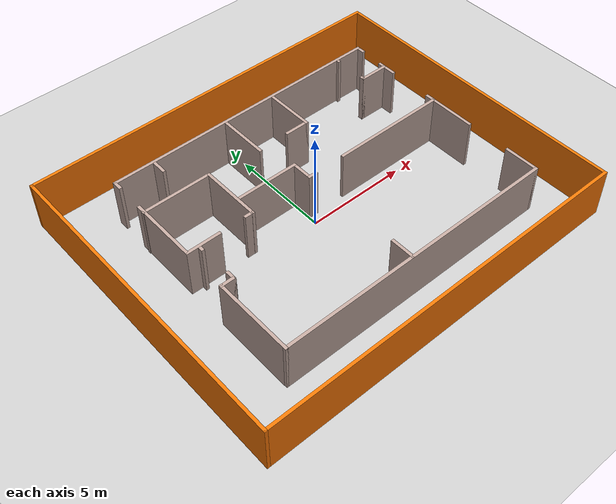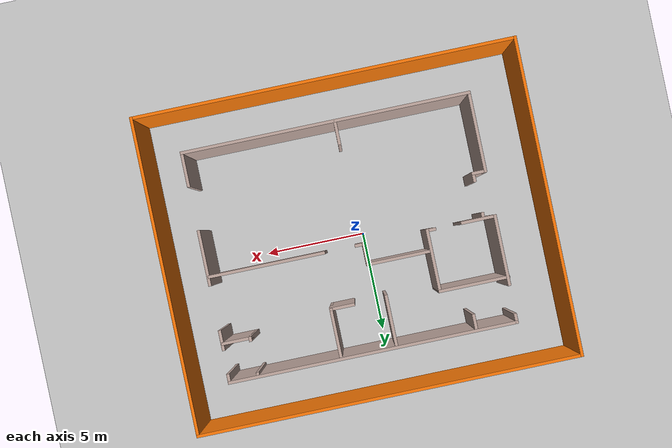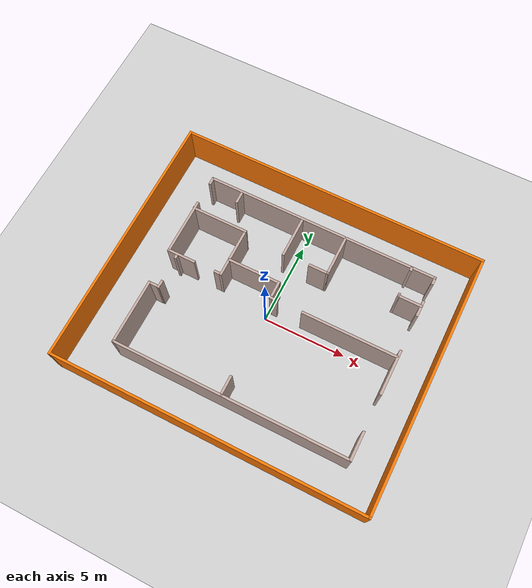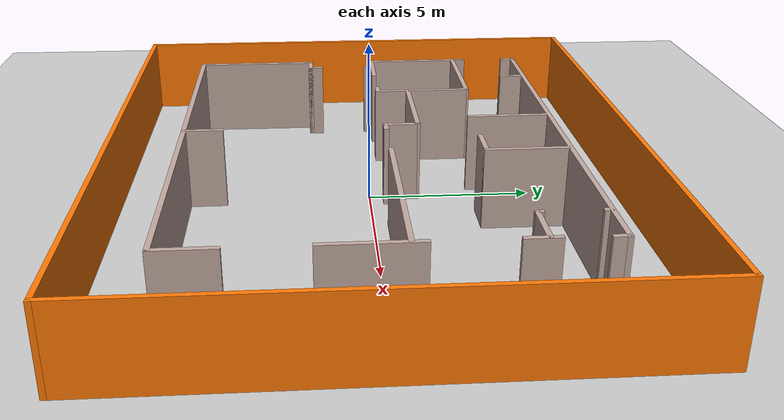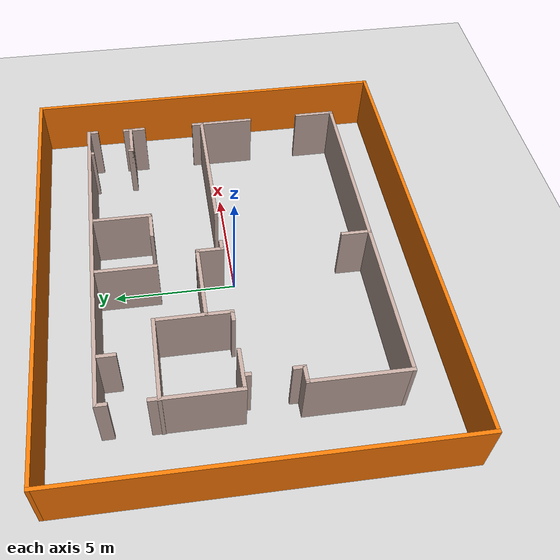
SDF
<sdf version="1.6">
 <world name="default">
  <light name="sun" type="directional">
   <pose>0 0 10 0 -0 0</pose>
   <diffuse>0.8 0.8 0.8 1</diffuse>
   <specular>0.1 0.1 0.1 1</specular>
   <attenuation>
    <range>1000</range>
    <constant>0.9</constant>
    <linear>0.01</linear>
    <quadratic>0.001</quadratic>
   </attenuation>
   <direction>-0.5 0.5 -1</direction>
  </light>
  <model name="ground_plane">
   <static>1</static>
   <link name="link">
    <collision name="collision">
     <geometry><plane><normal>0 0 1</normal><size>100 100</size></plane></geometry>
     <surface><friction><ode><mu>100</mu><mu2>50</mu2></ode></friction></surface>
    </collision>
    <visual name="visual">
     <cast_shadows>0</cast_shadows>
     <geometry><plane><normal>0 0 1</normal><size>100 100</size></plane></geometry>
     <material>
      <script><uri>file://media/materials/scripts/gazebo.material</uri><name>Gazebo/Grey</name></script>
     </material>
    </visual>
   </link>
  </model>
  <gravity>0 0 -9.8</gravity>
  <magnetic_field>6e-06 2.3e-05 -4.2e-05</magnetic_field>
  <atmosphere type="adiabatic"/>
  <physics name="default_physics" default="0" type="ode">
   <max_step_size>0.001</max_step_size>
   <real_time_factor>1</real_time_factor>
   <real_time_update_rate>1000</real_time_update_rate>
  </physics>
  <scene><ambient>0.4 0.4 0.4 1</ambient><background>0.7 0.7 0.7 1</background><shadows>1</shadows></scene>
  <spherical_coordinates>
   <surface_model>EARTH_WGS84</surface_model>
   <latitude_deg>0</latitude_deg>
   <longitude_deg>0</longitude_deg>
   <elevation>0</elevation>
   <heading_deg>0</heading_deg>
  </spherical_coordinates>
  <model name="Simple_House">
   <pose>0.69044 0.03862 0 0 -0 0</pose>
   <link name="Wall_10">
    <collision name="Wall_10_Collision">
     <geometry><box><size>1.75 0.15 2.5</size></box></geometry>
     <pose>0 0 1.25 0 -0 0</pose>
    </collision>
    <visual name="Wall_10_Visual">
     <pose>0 0 1.25 0 -0 0</pose>
     <geometry><box><size>1.75 0.15 2.5</size></box></geometry>
     <material>
      <script><uri>file://media/materials/scripts/gazebo.material</uri><name>Gazebo/Grey</name></script>
      <ambient>0.760784 0.662745 0.627451 1</ambient>
     </material>
    </visual>
    <pose>7.05351 -4.83433 0 0 -0 1.5708</pose>
   </link>
   <link name="Wall_12">
    <collision name="Wall_12_Collision">
     <geometry><box><size>5.75 0.15 2.5</size></box></geometry>
     <pose>0 0 1.25 0 -0 0</pose>
    </collision>
    <visual name="Wall_12_Visual">
     <pose>0 0 1.25 0 -0 0</pose>
     <geometry><box><size>5.75 0.15 2.5</size></box></geometry>
     <material>
      <script><uri>file://media/materials/scripts/gazebo.material</uri><name>Gazebo/Grey</name></script>
      <ambient>0.760784 0.662745 0.627451 1</ambient>
     </material>
    </visual>
    <pose>4.1756 0.462498 0 0 -0 0</pose>
   </link>
   <link name="Wall_14">
    <collision name="Wall_14_Collision">
     <geometry><box><size>2.75 0.15 2.5</size></box></geometry>
     <pose>0 0 1.25 0 -0 0</pose>
    </collision>
    <visual name="Wall_14_Visual">
     <pose>0 0 1.25 0 -0 0</pose>
     <geometry><box><size>2.75 0.15 2.5</size></box></geometry>
     <material>
      <script><uri>file://media/materials/scripts/gazebo.material</uri><name>Gazebo/Grey</name></script>
      <ambient>0.760784 0.662745 0.627451 1</ambient>
     </material>
    </visual>
    <pose>7.0356 -0.467502 0 0 0 -1.5708</pose>
   </link>
   <link name="Wall_16">
    <collision name="Wall_16_Collision">
     <geometry><box><size>3.5 0.15 2.5</size></box></geometry>
     <pose>0 0 1.25 0 -0 0</pose>
    </collision>
    <visual name="Wall_16_Visual">
     <pose>0 0 1.25 0 -0 0</pose>
     <geometry><box><size>3.5 0.15 2.5</size></box></geometry>
     <material>
      <script><uri>file://media/materials/scripts/gazebo.material</uri><name>Gazebo/Grey</name></script>
      <ambient>0.760784 0.662745 0.627451 1</ambient>
     </material>
    </visual>
    <pose>-7.04937 2.10789 0 0 0 -1.5708</pose>
   </link>
   <link name="Wall_17">
    <collision name="Wall_17_Collision">
     <geometry><box><size>1.75 0.15 2.5</size></box></geometry>
     <pose>0 0 1.25 0 -0 0</pose>
    </collision>
    <visual name="Wall_17_Visual">
     <pose>0 0 1.25 0 -0 0</pose>
     <geometry><box><size>1.75 0.15 2.5</size></box></geometry>
     <material>
      <script><uri>file://media/materials/scripts/gazebo.material</uri><name>Gazebo/Grey</name></script>
      <ambient>0.760784 0.662745 0.627451 1</ambient>
     </material>
    </visual>
    <pose>-6.24937 0.432887 0 0 -0 0</pose>
   </link>
   <link name="Wall_19">
    <collision name="Wall_19_Collision">
     <geometry><box><size>0.25 0.15 2.5</size></box></geometry>
     <pose>0 0 1.25 0 -0 0</pose>
    </collision>
    <visual name="Wall_19_Visual">
     <pose>0 0 1.25 0 -0 0</pose>
     <geometry><box><size>0.25 0.15 2.5</size></box></geometry>
     <material>
      <script><uri>file://media/materials/scripts/gazebo.material</uri><name>Gazebo/Grey</name></script>
      <ambient>0.760784 0.662745 0.627451 1</ambient>
     </material>
    </visual>
    <pose>-6.48619 0.252671 0 0 -0 1.5708</pose>
   </link>
   <link name="Wall_2">
    <collision name="Wall_2_Collision">
     <geometry><box><size>1.25 0.15 2.5</size></box></geometry>
     <pose>0 0 1.25 0 -0 0</pose>
    </collision>
    <visual name="Wall_2_Visual">
     <pose>0 0 1.25 0 -0 0</pose>
     <geometry><box><size>1.25 0.15 2.5</size></box></geometry>
     <material>
      <script><uri>file://media/materials/scripts/gazebo.material</uri><name>Gazebo/Grey</name></script>
      <ambient>0.760784 0.662745 0.627451 1</ambient>
     </material>
    </visual>
    <pose>-0.456991 -5.08033 0 0 0 -1.5708</pose>
   </link>
   <link name="Wall_21">
    <collision name="Wall_21_Collision">
     <geometry><box><size>14.25 0.15 2.5</size></box></geometry>
     <pose>0 0 1.25 0 -0 0</pose>
    </collision>
    <visual name="Wall_21_Visual">
     <pose>0 0 1.25 0 -0 0</pose>
     <geometry><box><size>14.25 0.15 2.5</size></box></geometry>
     <material>
      <script><uri>file://media/materials/scripts/gazebo.material</uri><name>Gazebo/Grey</name></script>
      <ambient>0.760784 0.662745 0.627451 1</ambient>
     </material>
    </visual>
    <pose>0.024064 5.63433 0 0 -0 0</pose>
   </link>
   <link name="Wall_22">
    <collision name="Wall_22_Collision">
     <geometry><box><size>0.5 0.15 2.5</size></box></geometry>
     <pose>0 0 1.25 0 -0 0</pose>
    </collision>
    <visual name="Wall_22_Visual">
     <pose>0 0 1.25 0 -0 0</pose>
     <geometry><box><size>0.5 0.15 2.5</size></box></geometry>
     <material>
      <script><uri>file://media/materials/scripts/gazebo.material</uri><name>Gazebo/Grey</name></script>
      <ambient>0.760784 0.662745 0.627451 1</ambient>
     </material>
    </visual>
    <pose>7.07406 5.45933 0 0 0 -1.5708</pose>
   </link>
   <link name="Wall_24">
    <collision name="Wall_24_Collision">
     <geometry><box><size>0.5 0.15 2.5</size></box></geometry>
     <pose>0 0 1.25 0 -0 0</pose>
    </collision>
    <visual name="Wall_24_Visual">
     <pose>0 0 1.25 0 -0 0</pose>
     <geometry><box><size>0.5 0.15 2.5</size></box></geometry>
     <material>
      <script><uri>file://media/materials/scripts/gazebo.material</uri><name>Gazebo/Grey</name></script>
      <ambient>0.760784 0.662745 0.627451 1</ambient>
     </material>
    </visual>
    <pose>-7.02594 5.45933 0 0 0 -1.5708</pose>
   </link>
   <link name="Wall_30">
    <collision name="Wall_30_Collision">
     <geometry><box><size>3.5 0.15 2.5</size></box></geometry>
     <pose>0 0 1.25 0 -0 0</pose>
    </collision>
    <visual name="Wall_30_Visual">
     <pose>0 0 1.25 0 -0 0</pose>
     <geometry><box><size>3.5 0.15 2.5</size></box></geometry>
     <material>
      <script><uri>file://media/materials/scripts/gazebo.material</uri><name>Gazebo/Grey</name></script>
      <ambient>0.760784 0.662745 0.627451 1</ambient>
     </material>
    </visual>
    <pose>-5.39906 3.42228 0 0 -0 0</pose>
   </link>
   <link name="Wall_31">
    <collision name="Wall_31_Collision">
     <geometry><box><size>3.12778 0.15 2.5</size></box></geometry>
     <pose>0 0 1.25 0 -0 0</pose>
    </collision>
    <visual name="Wall_31_Visual">
     <pose>0 0 1.25 0 -0 0</pose>
     <geometry><box><size>3.12778 0.15 2.5</size></box></geometry>
     <material>
      <script><uri>file://media/materials/scripts/gazebo.material</uri><name>Gazebo/Grey</name></script>
      <ambient>0.760784 0.662745 0.627451 1</ambient>
     </material>
    </visual>
    <pose>-3.72132 1.93339 0 0 0 -1.56896</pose>
   </link>
   <link name="Wall_32">
    <collision name="Wall_32_Collision">
     <geometry><box><size>0.5 0.15 2.5</size></box></geometry>
     <pose>0 0 1.25 0 -0 0</pose>
    </collision>
    <visual name="Wall_32_Visual">
     <pose>0 0 1.25 0 -0 0</pose>
     <geometry><box><size>0.5 0.15 2.5</size></box></geometry>
     <material>
      <script><uri>file://media/materials/scripts/gazebo.material</uri><name>Gazebo/Grey</name></script>
      <ambient>0.760784 0.662745 0.627451 1</ambient>
     </material>
    </visual>
    <pose>-3.8979 0.44883 0 0 -0 3.14159</pose>
   </link>
   <link name="Wall_34">
    <collision name="Wall_34_Collision">
     <geometry><box><size>3.25 0.15 2.5</size></box></geometry>
     <pose>0 0 1.25 0 -0 0</pose>
    </collision>
    <visual name="Wall_34_Visual">
     <pose>0 0 1.25 0 -0 0</pose>
     <geometry><box><size>3.25 0.15 2.5</size></box></geometry>
     <material>
      <script><uri>file://media/materials/scripts/gazebo.material</uri><name>Gazebo/Grey</name></script>
      <ambient>0.760784 0.662745 0.627451 1</ambient>
     </material>
    </visual>
    <pose>-2.14323 1.4433 0 0 -0 0</pose>
   </link>
   <link name="Wall_35">
    <collision name="Wall_35_Collision">
     <geometry><box><size>1.14137 0.15 2.5</size></box></geometry>
     <pose>0 0 1.25 0 -0 0</pose>
    </collision>
    <visual name="Wall_35_Visual">
     <pose>0 0 1.25 0 -0 0</pose>
     <geometry><box><size>1.14137 0.15 2.5</size></box></geometry>
     <material>
      <script><uri>file://media/materials/scripts/gazebo.material</uri><name>Gazebo/Grey</name></script>
      <ambient>0.760784 0.662745 0.627451 1</ambient>
     </material>
    </visual>
    <pose>-0.593183 0.947638 0 0 0 -1.5707</pose>
   </link>
   <link name="Wall_36">
    <collision name="Wall_36_Collision">
     <geometry><box><size>0.5 0.15 2.5</size></box></geometry>
     <pose>0 0 1.25 0 -0 0</pose>
    </collision>
    <visual name="Wall_36_Visual">
     <pose>0 0 1.25 0 -0 0</pose>
     <geometry><box><size>0.5 0.15 2.5</size></box></geometry>
     <material>
      <script><uri>file://media/materials/scripts/gazebo.material</uri><name>Gazebo/Grey</name></script>
      <ambient>0.760784 0.662745 0.627451 1</ambient>
     </material>
    </visual>
    <pose>-0.413811 0.451973 0 0 -0 0</pose>
   </link>
   <link name="Wall_38">
    <collision name="Wall_38_Collision">
     <geometry><box><size>0.75 0.15 2.5</size></box></geometry>
     <pose>0 0 1.25 0 -0 0</pose>
    </collision>
    <visual name="Wall_38_Visual">
     <pose>0 0 1.25 0 -0 0</pose>
     <geometry><box><size>0.75 0.15 2.5</size></box></geometry>
     <material>
      <script><uri>file://media/materials/scripts/gazebo.material</uri><name>Gazebo/Grey</name></script>
      <ambient>0.760784 0.662745 0.627451 1</ambient>
     </material>
    </visual>
    <pose>-5.056 5.20196 0 0 -0 1.5708</pose>
   </link>
   <link name="Wall_4">
    <collision name="Wall_4_Collision">
     <geometry><box><size>14.25 0.15 2.5</size></box></geometry>
     <pose>0 0 1.25 0 -0 0</pose>
    </collision>
    <visual name="Wall_4_Visual">
     <pose>0 0 1.25 0 -0 0</pose>
     <geometry><box><size>14.25 0.15 2.5</size></box></geometry>
     <material>
      <script><uri>file://media/materials/scripts/gazebo.material</uri><name>Gazebo/Grey</name></script>
      <ambient>0.760784 0.662745 0.627451 1</ambient>
     </material>
    </visual>
    <pose>0.003509 -5.63433 0 0 -0 0</pose>
   </link>
   <link name="Wall_40">
    <collision name="Wall_40_Collision">
     <geometry><box><size>2.5 0.15 2.5</size></box></geometry>
     <pose>0 0 1.25 0 -0 0</pose>
    </collision>
    <visual name="Wall_40_Visual">
     <pose>0 0 1.25 0 -0 0</pose>
     <geometry><box><size>2.5 0.15 2.5</size></box></geometry>
     <material>
      <script><uri>file://media/materials/scripts/gazebo.material</uri><name>Gazebo/Grey</name></script>
      <ambient>0.760784 0.662745 0.627451 1</ambient>
     </material>
    </visual>
    <pose>-1.13734 4.3094 0 0 -0 1.5708</pose>
   </link>
   <link name="Wall_42">
    <collision name="Wall_42_Collision">
     <geometry><box><size>1.25 0.15 2.5</size></box></geometry>
     <pose>0 0 1.25 0 -0 0</pose>
    </collision>
    <visual name="Wall_42_Visual">
     <pose>0 0 1.25 0 -0 0</pose>
     <geometry><box><size>1.25 0.15 2.5</size></box></geometry>
     <material>
      <script><uri>file://media/materials/scripts/gazebo.material</uri><name>Gazebo/Grey</name></script>
      <ambient>0.760784 0.662745 0.627451 1</ambient>
     </material>
    </visual>
    <pose>1.03736 3.19013 0 0 -0 0</pose>
   </link>
   <link name="Wall_43">
    <collision name="Wall_43_Collision">
     <geometry><box><size>2.5 0.15 2.5</size></box></geometry>
     <pose>0 0 1.25 0 -0 0</pose>
    </collision>
    <visual name="Wall_43_Visual">
     <pose>0 0 1.25 0 -0 0</pose>
     <geometry><box><size>2.5 0.15 2.5</size></box></geometry>
     <material>
      <script><uri>file://media/materials/scripts/gazebo.material</uri><name>Gazebo/Grey</name></script>
      <ambient>0.760784 0.662745 0.627451 1</ambient>
     </material>
    </visual>
    <pose>1.58736 4.36513 0 0 -0 1.5708</pose>
   </link>
   <link name="Wall_45">
    <collision name="Wall_45_Collision">
     <geometry><box><size>0.25 0.15 2.5</size></box></geometry>
     <pose>0 0 1.25 0 -0 0</pose>
    </collision>
    <visual name="Wall_45_Visual">
     <pose>0 0 1.25 0 -0 0</pose>
     <geometry><box><size>0.25 0.15 2.5</size></box></geometry>
     <material>
      <script><uri>file://media/materials/scripts/gazebo.material</uri><name>Gazebo/Grey</name></script>
      <ambient>0.760784 0.662745 0.627451 1</ambient>
     </material>
    </visual>
    <pose>5.66862 5.54572 0 0 0 -1.5708</pose>
   </link>
   <link name="Wall_47">
    <collision name="Wall_47_Collision">
     <geometry><box><size>0.25 0.15 2.5</size></box></geometry>
     <pose>0 0 1.25 0 -0 0</pose>
    </collision>
    <visual name="Wall_47_Visual">
     <pose>0 0 1.25 0 -0 0</pose>
     <geometry><box><size>0.25 0.15 2.5</size></box></geometry>
     <material>
      <script><uri>file://media/materials/scripts/gazebo.material</uri><name>Gazebo/Grey</name></script>
      <ambient>0.760784 0.662745 0.627451 1</ambient>
     </material>
    </visual>
    <pose>5.66862 3.78779 0 0 0 -1.5708</pose>
   </link>
   <link name="Wall_48">
    <collision name="Wall_48_Collision">
     <geometry><box><size>1.5 0.15 2.5</size></box></geometry>
     <pose>0 0 1.25 0 -0 0</pose>
    </collision>
    <visual name="Wall_48_Visual">
     <pose>0 0 1.25 0 -0 0</pose>
     <geometry><box><size>1.5 0.15 2.5</size></box></geometry>
     <material>
      <script><uri>file://media/materials/scripts/gazebo.material</uri><name>Gazebo/Grey</name></script>
      <ambient>0.760784 0.662745 0.627451 1</ambient>
     </material>
    </visual>
    <pose>6.34362 3.73779 0 0 -0 0</pose>
   </link>
   <link name="Wall_51">
    <collision name="Wall_51_Collision">
     <geometry><box><size>1 0.15 2.5</size></box></geometry>
     <pose>0 0 1.25 0 -0 0</pose>
    </collision>
    <visual name="Wall_51_Visual">
     <pose>0 0 1.25 0 -0 0</pose>
     <geometry><box><size>1 0.15 2.5</size></box></geometry>
     <material>
      <script><uri>file://media/materials/scripts/gazebo.material</uri><name>Gazebo/Grey</name></script>
      <ambient>0.760784 0.662745 0.627451 1</ambient>
     </material>
    </visual>
    <pose>7.03332 3.5747 0 0 0 -1.5708</pose>
   </link>
   <link name="Wall_6">
    <collision name="Wall_6_Collision">
     <geometry><box><size>4 0.15 2.5</size></box></geometry>
     <pose>0 0 1.25 0 -0 0</pose>
    </collision>
    <visual name="Wall_6_Visual">
     <pose>0 0 1.25 0 -0 0</pose>
     <geometry><box><size>4 0.15 2.5</size></box></geometry>
     <material>
      <script><uri>file://media/materials/scripts/gazebo.material</uri><name>Gazebo/Grey</name></script>
      <ambient>0.760784 0.662745 0.627451 1</ambient>
     </material>
    </visual>
    <pose>-7.04649 -3.70933 0 0 -0 1.5708</pose>
   </link>
   <link name="Wall_7">
    <collision name="Wall_7_Collision">
     <geometry><box><size>0.75 0.15 2.5</size></box></geometry>
     <pose>0 0 1.25 0 -0 0</pose>
    </collision>
    <visual name="Wall_7_Visual">
     <pose>0 0 1.25 0 -0 0</pose>
     <geometry><box><size>0.75 0.15 2.5</size></box></geometry>
     <material>
      <script><uri>file://media/materials/scripts/gazebo.material</uri><name>Gazebo/Grey</name></script>
      <ambient>0.760784 0.662745 0.627451 1</ambient>
     </material>
    </visual>
    <pose>-6.74649 -1.78433 0 0 -0 0</pose>
   </link>
   <link name="Wall_8">
    <collision name="Wall_8_Collision">
     <geometry><box><size>0.5 0.15 2.5</size></box></geometry>
     <pose>0 0 1.25 0 -0 0</pose>
    </collision>
    <visual name="Wall_8_Visual">
     <pose>0 0 1.25 0 -0 0</pose>
     <geometry><box><size>0.5 0.15 2.5</size></box></geometry>
     <material>
      <script><uri>file://media/materials/scripts/gazebo.material</uri><name>Gazebo/Grey</name></script>
      <ambient>0.760784 0.662745 0.627451 1</ambient>
     </material>
    </visual>
    <pose>-6.44649 -1.60933 0 0 -0 1.5708</pose>
   </link>
   <static>1</static>
  </model>
  <model name="New_Box">
   <pose>0.353646 0.077388 0 0 -0 0</pose>
   <link name="Wall_0">
    <collision name="Wall_0_Collision">
     <geometry><box><size>15.75 0.15 2.5</size></box></geometry>
     <pose>0 0 1.25 0 -0 0</pose>
    </collision>
    <visual name="Wall_0_Visual">
     <pose>0 0 1.25 0 -0 0</pose>
     <geometry><box><size>15.75 0.15 2.5</size></box></geometry>
     <material>
      <script><uri>file://media/materials/scripts/gazebo.material</uri><name>Gazebo/Grey</name></script>
      <ambient>0.996078 0.47451 0.0196078 1</ambient>
     </material>
    </visual>
    <pose>-9.425 0 0 0 0 -1.5708</pose>
   </link>
   <link name="Wall_2">
    <collision name="Wall_2_Collision">
     <geometry><box><size>19 0.15 2.5</size></box></geometry>
     <pose>0 0 1.25 0 -0 0</pose>
    </collision>
    <visual name="Wall_2_Visual">
     <pose>0 0 1.25 0 -0 0</pose>
     <geometry><box><size>19 0.15 2.5</size></box></geometry>
     <material>
      <script><uri>file://media/materials/scripts/gazebo.material</uri><name>Gazebo/Grey</name></script>
      <ambient>0.996078 0.47451 0.0196078 1</ambient>
     </material>
    </visual>
    <pose>0 7.8 0 0 -0 0</pose>
   </link>
   <link name="Wall_3">
    <collision name="Wall_3_Collision">
     <geometry><box><size>15.75 0.15 2.5</size></box></geometry>
     <pose>0 0 1.25 0 -0 0</pose>
    </collision>
    <visual name="Wall_3_Visual">
     <pose>0 0 1.25 0 -0 0</pose>
     <geometry><box><size>15.75 0.15 2.5</size></box></geometry>
     <material>
      <script><uri>file://media/materials/scripts/gazebo.material</uri><name>Gazebo/Grey</name></script>
      <ambient>0.996078 0.47451 0.0196078 1</ambient>
     </material>
    </visual>
    <pose>9.425 0 0 0 0 -1.5708</pose>
   </link>
   <link name="Wall_4">
    <collision name="Wall_4_Collision">
     <geometry><box><size>19 0.15 2.5</size></box></geometry>
     <pose>0 0 1.25 0 -0 0</pose>
    </collision>
    <visual name="Wall_4_Visual">
     <pose>0 0 1.25 0 -0 0</pose>
     <geometry><box><size>19 0.15 2.5</size></box></geometry>
     <material>
      <script><uri>file://media/materials/scripts/gazebo.material</uri><name>Gazebo/Grey</name></script>
      <ambient>0.996078 0.47451 0.0196078 1</ambient>
     </material>
    </visual>
    <pose>0 -7.8 0 0 -0 3.14159</pose>
   </link>
   <static>1</static>
  </model>
 </world>
</sdf>
